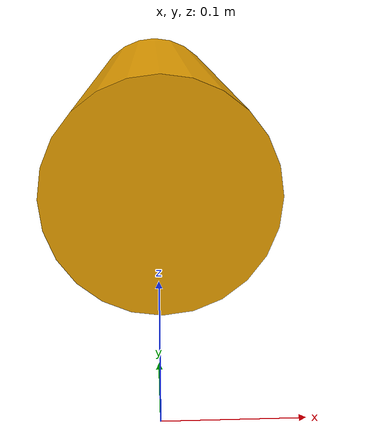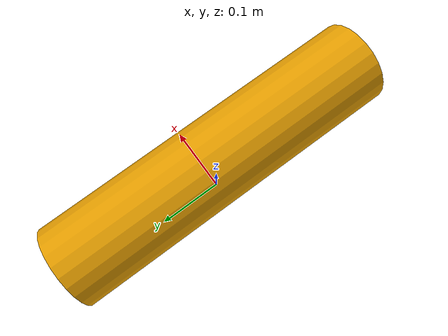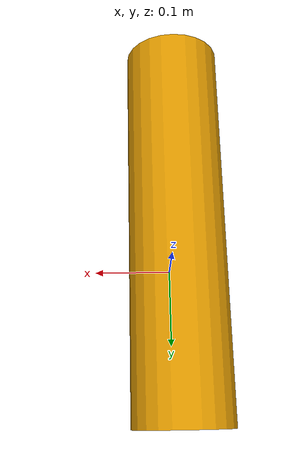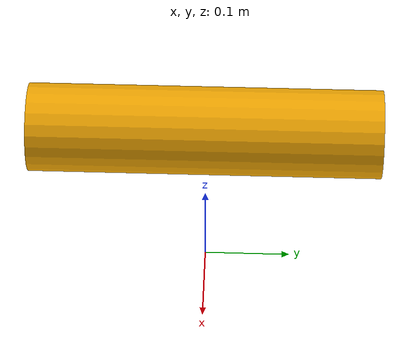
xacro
<?xml version="1.0"?>
<robot xmlns:xacro="http://www.ros.org/wiki/xacro" name="props">
  <!-- Comments never reach the output. -->
  <xacro:property name="radius" value="0.05"/>
  <xacro:property name="length" value="${radius * 8}"/>
  <xacro:property name="half" value="${length / 2}"/>
  <xacro:property name="quarter_turn" value="${pi / 2}"/>
  <xacro:property name="tilt" value="${radians(30)}"/>
  <xacro:property name="label" value="arm"/>
  <xacro:property name="late" value="${radius + early}"/>
  <xacro:property name="early" value="1"/>
  <link name="${label}_link">
    <visual>
      <origin xyz="0 0 ${half}" rpy="${quarter_turn} ${-tilt} 0"/>
      <geometry>
        <cylinder radius="${radius}" length="${length}"/>
      </geometry>
    </visual>
    <note>${label} reaches ${late} m, costs $${5}</note>
  </link>
</robot>
